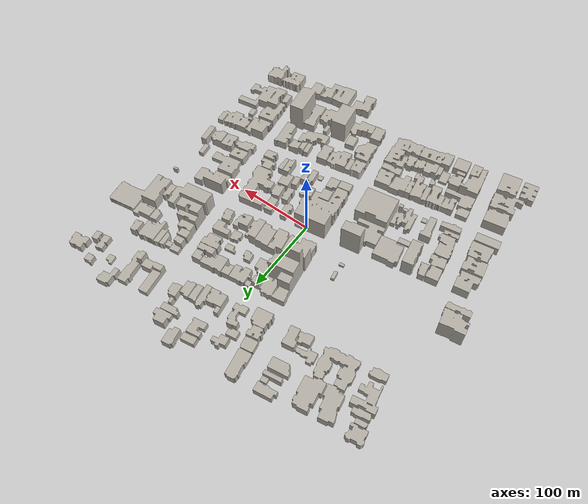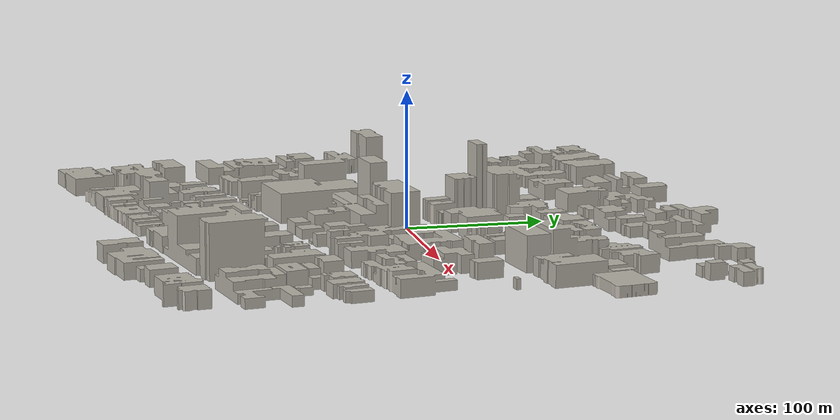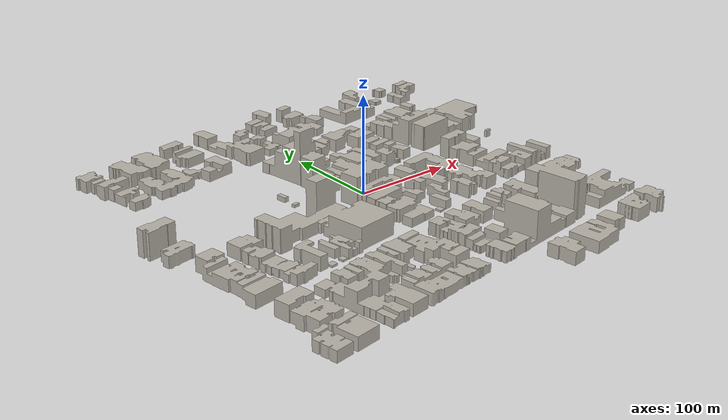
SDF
<?xml version="1.0" ?>
<sdf version="1.8">
  <model name="site_buildings">
    <static>true</static>
    <link name="link">
      <visual name="visual">
        <geometry><mesh><uri>meshes/buildings.obj</uri></mesh></geometry>
        <material>
          <ambient>0.62 0.60 0.56 1</ambient>
          <diffuse>0.72 0.70 0.66 1</diffuse>
          <specular>0.10 0.10 0.10 1</specular>
        </material>
      </visual>
      <collision name="c0">
        <pose>211.459 99.373 4.000 0 0 0.156840</pose>
        <geometry><box><size>39.560 30.591 8.000</size></box></geometry>
      </collision>
      <collision name="c1">
        <pose>185.775 105.556 4.000 0 0 1.716230</pose>
        <geometry><box><size>17.447 7.298 8.000</size></box></geometry>
      </collision>
      <collision name="c2">
        <pose>-175.502 -207.403 6.500 0 0 -1.402006</pose>
        <geometry><box><size>22.384 25.153 13.000</size></box></geometry>
      </collision>
      <collision name="c3">
        <pose>-201.664 -209.033 5.500 0 0 -2.982608</pose>
        <geometry><box><size>18.568 26.358 11.000</size></box></geometry>
      </collision>
      <collision name="c4">
        <pose>-178.064 -192.351 7.000 0 0 -2.968230</pose>
        <geometry><box><size>25.110 8.268 14.000</size></box></geometry>
      </collision>
      <collision name="c5">
        <pose>-196.344 -188.106 5.000 0 0 1.734147</pose>
        <geometry><box><size>6.389 14.358 10.000</size></box></geometry>
      </collision>
      <collision name="c6">
        <pose>191.258 -187.103 6.500 0 0 1.718981</pose>
        <geometry><box><size>19.528 7.616 13.000</size></box></geometry>
      </collision>
      <collision name="c7">
        <pose>163.342 -194.218 6.500 0 0 0.156268</pose>
        <geometry><box><size>22.168 7.325 13.000</size></box></geometry>
      </collision>
      <collision name="c8">
        <pose>164.644 -201.282 6.500 0 0 -2.982312</pose>
        <geometry><box><size>21.965 7.189 13.000</size></box></geometry>
      </collision>
      <collision name="c9">
        <pose>184.236 -192.419 7.500 0 0 -1.422097</pose>
        <geometry><box><size>28.481 7.844 15.000</size></box></geometry>
      </collision>
      <collision name="c10">
        <pose>198.977 -186.747 6.500 0 0 1.719249</pose>
        <geometry><box><size>21.697 7.761 13.000</size></box></geometry>
      </collision>
      <collision name="c11">
        <pose>164.723 -185.632 6.500 0 0 -2.988580</pose>
        <geometry><box><size>27.115 9.290 13.000</size></box></geometry>
      </collision>
      <collision name="c12">
        <pose>208.738 189.336 5.409 0 0 0.159674</pose>
        <geometry><box><size>17.920 7.602 10.818</size></box></geometry>
      </collision>
      <collision name="c13">
        <pose>145.962 197.332 5.000 0 0 0.160651</pose>
        <geometry><box><size>17.170 22.279 10.000</size></box></geometry>
      </collision>
      <collision name="c14">
        <pose>194.996 167.234 6.000 0 0 -1.410300</pose>
        <geometry><box><size>11.254 8.693 12.000</size></box></geometry>
      </collision>
      <collision name="c15">
        <pose>181.410 193.962 4.000 0 0 0.160385</pose>
        <geometry><box><size>10.799 10.449 8.000</size></box></geometry>
      </collision>
      <collision name="c16">
        <pose>130.813 172.444 4.630 0 0 -1.408550</pose>
        <geometry><box><size>42.651 12.870 9.261</size></box></geometry>
      </collision>
      <collision name="c17">
        <pose>184.903 168.526 4.000 0 0 1.731159</pose>
        <geometry><box><size>19.681 9.445 8.000</size></box></geometry>
      </collision>
      <collision name="c18">
        <pose>129.658 156.284 7.500 0 0 -1.408852</pose>
        <geometry><box><size>11.099 6.602 15.000</size></box></geometry>
      </collision>
      <collision name="c19">
        <pose>100.401 173.926 4.189 0 0 1.733142</pose>
        <geometry><box><size>30.209 11.393 8.377</size></box></geometry>
      </collision>
      <collision name="c20">
        <pose>119.849 159.510 5.500 0 0 -1.408668</pose>
        <geometry><box><size>11.022 7.411 11.000</size></box></geometry>
      </collision>
      <collision name="c21">
        <pose>113.184 158.387 5.500 0 0 1.732644</pose>
        <geometry><box><size>10.941 6.120 11.000</size></box></geometry>
      </collision>
      <collision name="c22">
        <pose>104.131 155.313 6.500 0 0 -2.980592</pose>
        <geometry><box><size>12.748 7.760 13.000</size></box></geometry>
      </collision>
      <collision name="c23">
        <pose>162.744 179.022 2.000 0 0 1.731443</pose>
        <geometry><box><size>10.807 8.964 4.000</size></box></geometry>
      </collision>
      <collision name="c24">
        <pose>210.134 181.277 5.000 0 0 0.159758</pose>
        <geometry><box><size>21.293 8.757 10.000</size></box></geometry>
      </collision>
      <collision name="c25">
        <pose>45.293 153.624 5.396 0 0 -1.409830</pose>
        <geometry><box><size>20.677 9.598 10.791</size></box></geometry>
      </collision>
      <collision name="c26">
        <pose>58.098 154.430 4.000 0 0 1.731167</pose>
        <geometry><box><size>19.922 12.015 8.000</size></box></geometry>
      </collision>
      <collision name="c27">
        <pose>36.136 150.958 4.500 0 0 -1.409782</pose>
        <geometry><box><size>28.745 9.337 9.000</size></box></geometry>
      </collision>
      <collision name="c28">
        <pose>26.555 145.624 6.000 0 0 0.159732</pose>
        <geometry><box><size>11.246 17.757 12.000</size></box></geometry>
      </collision>
      <collision name="c29">
        <pose>62.457 177.539 5.041 0 0 1.731138</pose>
        <geometry><box><size>7.069 4.013 10.082</size></box></geometry>
      </collision>
      <collision name="c30">
        <pose>55.381 186.335 5.000 0 0 0.159439</pose>
        <geometry><box><size>22.874 8.355 10.000</size></box></geometry>
      </collision>
      <collision name="c31">
        <pose>16.240 144.164 6.000 0 0 1.736226</pose>
        <geometry><box><size>15.837 10.751 12.000</size></box></geometry>
      </collision>
      <collision name="c32">
        <pose>68.540 165.462 5.500 0 0 -1.409947</pose>
        <geometry><box><size>15.883 12.156 11.000</size></box></geometry>
      </collision>
      <collision name="c33">
        <pose>31.713 210.015 5.500 0 0 -1.393572</pose>
        <geometry><box><size>21.016 12.900 11.000</size></box></geometry>
      </collision>
      <collision name="c34">
        <pose>-14.846 181.978 5.000 0 0 -1.391594</pose>
        <geometry><box><size>14.314 17.919 10.000</size></box></geometry>
      </collision>
      <collision name="c35">
        <pose>-43.773 165.692 3.969 0 0 -2.968375</pose>
        <geometry><box><size>16.430 14.516 7.939</size></box></geometry>
      </collision>
      <collision name="c36">
        <pose>-37.434 134.749 7.000 0 0 0.177727</pose>
        <geometry><box><size>22.044 20.702 14.000</size></box></geometry>
      </collision>
      <collision name="c37">
        <pose>-50.182 197.194 6.000 0 0 0.174072</pose>
        <geometry><box><size>14.180 22.698 12.000</size></box></geometry>
      </collision>
      <collision name="c38">
        <pose>-8.468 141.723 3.576 0 0 -1.422294</pose>
        <geometry><box><size>18.810 17.048 7.152</size></box></geometry>
      </collision>
      <collision name="c39">
        <pose>-41.483 151.637 6.500 0 0 0.172642</pose>
        <geometry><box><size>16.745 13.963 13.000</size></box></geometry>
      </collision>
      <collision name="c40">
        <pose>54.712 203.045 7.000 0 0 -2.971597</pose>
        <geometry><box><size>14.185 8.302 14.000</size></box></geometry>
      </collision>
      <collision name="c41">
        <pose>14.434 200.347 4.500 0 0 0.175326</pose>
        <geometry><box><size>17.771 8.840 9.000</size></box></geometry>
      </collision>
      <collision name="c42">
        <pose>-12.032 156.009 6.000 0 0 -2.990803</pose>
        <geometry><box><size>14.770 10.570 12.000</size></box></geometry>
      </collision>
      <collision name="c43">
        <pose>15.659 189.454 4.500 0 0 0.175089</pose>
        <geometry><box><size>17.414 9.662 9.000</size></box></geometry>
      </collision>
      <collision name="c44">
        <pose>17.581 180.329 4.000 0 0 0.175620</pose>
        <geometry><box><size>18.347 8.980 8.000</size></box></geometry>
      </collision>
      <collision name="c45">
        <pose>59.133 195.310 4.000 0 0 -2.971827</pose>
        <geometry><box><size>21.419 8.305 8.000</size></box></geometry>
      </collision>
      <collision name="c46">
        <pose>-46.035 179.534 2.581 0 0 0.172690</pose>
        <geometry><box><size>16.768 13.545 5.162</size></box></geometry>
      </collision>
      <collision name="c47">
        <pose>71.550 47.044 4.500 0 0 -1.411193</pose>
        <geometry><box><size>14.890 6.386 9.000</size></box></geometry>
      </collision>
      <collision name="c48">
        <pose>59.948 64.232 3.500 0 0 -1.409996</pose>
        <geometry><box><size>13.261 12.018 7.000</size></box></geometry>
      </collision>
      <collision name="c49">
        <pose>-34.406 96.657 5.411 0 0 -2.979550</pose>
        <geometry><box><size>16.452 16.200 10.822</size></box></geometry>
      </collision>
      <collision name="c50">
        <pose>74.009 37.211 2.000 0 0 -1.411116</pose>
        <geometry><box><size>5.324 4.789 4.000</size></box></geometry>
      </collision>
      <collision name="c51">
        <pose>51.296 44.054 3.192 0 0 1.720925</pose>
        <geometry><box><size>24.836 8.652 6.385</size></box></geometry>
      </collision>
      <collision name="c52">
        <pose>-16.224 96.307 5.032 0 0 1.734293</pose>
        <geometry><box><size>23.585 18.469 10.063</size></box></geometry>
      </collision>
      <collision name="c53">
        <pose>62.558 42.155 7.000 0 0 1.720564</pose>
        <geometry><box><size>15.530 13.052 14.000</size></box></geometry>
      </collision>
      <collision name="c54">
        <pose>-1.930 36.277 5.500 0 0 -1.408106</pose>
        <geometry><box><size>25.867 9.603 11.000</size></box></geometry>
      </collision>
      <collision name="c55">
        <pose>-16.916 29.489 7.000 0 0 1.733789</pose>
        <geometry><box><size>18.706 10.060 14.000</size></box></geometry>
      </collision>
      <collision name="c56">
        <pose>13.844 102.386 5.500 0 0 -1.407132</pose>
        <geometry><box><size>20.071 14.364 11.000</size></box></geometry>
      </collision>
      <collision name="c57">
        <pose>-26.785 27.888 7.500 0 0 -1.408027</pose>
        <geometry><box><size>18.688 9.939 15.000</size></box></geometry>
      </collision>
      <collision name="c58">
        <pose>-24.981 46.229 15.500 0 0 1.734543</pose>
        <geometry><box><size>16.961 19.316 31.000</size></box></geometry>
      </collision>
      <collision name="c59">
        <pose>22.854 45.746 8.000 0 0 -1.420657</pose>
        <geometry><box><size>24.504 9.191 16.000</size></box></geometry>
      </collision>
      <collision name="c60">
        <pose>-31.573 83.566 13.500 0 0 -2.979591</pose>
        <geometry><box><size>15.980 10.552 27.000</size></box></geometry>
      </collision>
      <collision name="c61">
        <pose>85.761 62.872 5.000 0 0 -2.981768</pose>
        <geometry><box><size>11.162 7.679 10.000</size></box></geometry>
      </collision>
      <collision name="c62">
        <pose>6.121 106.731 3.316 0 0 1.733760</pose>
        <geometry><box><size>7.170 6.390 6.632</size></box></geometry>
      </collision>
      <collision name="c63">
        <pose>32.290 44.935 8.000 0 0 -1.420962</pose>
        <geometry><box><size>26.730 9.245 16.000</size></box></geometry>
      </collision>
      <collision name="c64">
        <pose>79.377 69.629 5.500 0 0 0.159266</pose>
        <geometry><box><size>22.526 7.704 11.000</size></box></geometry>
      </collision>
      <collision name="c65">
        <pose>9.765 77.684 4.000 0 0 1.733677</pose>
        <geometry><box><size>14.146 10.102 8.000</size></box></geometry>
      </collision>
      <collision name="c66">
        <pose>36.097 108.090 5.500 0 0 -1.407312</pose>
        <geometry><box><size>14.165 10.512 11.000</size></box></geometry>
      </collision>
      <collision name="c67">
        <pose>76.958 113.896 6.000 0 0 0.161885</pose>
        <geometry><box><size>12.203 12.103 12.000</size></box></geometry>
      </collision>
      <collision name="c68">
        <pose>-1.008 99.422 5.720 0 0 0.162216</pose>
        <geometry><box><size>10.061 9.576 11.439</size></box></geometry>
      </collision>
      <collision name="c69">
        <pose>-26.748 58.656 27.500 0 0 -2.978982</pose>
        <geometry><box><size>17.375 7.650 55.000</size></box></geometry>
      </collision>
      <collision name="c70">
        <pose>41.877 44.952 8.500 0 0 1.720634</pose>
        <geometry><box><size>27.217 9.714 17.000</size></box></geometry>
      </collision>
      <collision name="c71">
        <pose>1.669 83.127 6.500 0 0 -1.408217</pose>
        <geometry><box><size>16.746 10.400 13.000</size></box></geometry>
      </collision>
      <collision name="c72">
        <pose>-20.798 71.742 17.500 0 0 0.162243</pose>
        <geometry><box><size>33.397 16.271 35.000</size></box></geometry>
      </collision>
      <collision name="c73">
        <pose>48.561 108.490 6.500 0 0 1.734402</pose>
        <geometry><box><size>19.591 14.207 13.000</size></box></geometry>
      </collision>
      <collision name="c74">
        <pose>14.342 41.639 7.000 0 0 1.733691</pose>
        <geometry><box><size>29.990 9.253 14.000</size></box></geometry>
      </collision>
      <collision name="c75">
        <pose>62.910 113.004 6.000 0 0 1.734428</pose>
        <geometry><box><size>12.826 15.026 12.000</size></box></geometry>
      </collision>
      <collision name="c76">
        <pose>87.452 47.661 5.000 0 0 -1.410579</pose>
        <geometry><box><size>15.664 12.331 10.000</size></box></geometry>
      </collision>
      <collision name="c77">
        <pose>26.051 104.583 5.000 0 0 -1.407660</pose>
        <geometry><box><size>17.861 10.448 10.000</size></box></geometry>
      </collision>
      <collision name="c78">
        <pose>6.453 38.001 7.000 0 0 -1.408129</pose>
        <geometry><box><size>25.341 7.503 14.000</size></box></geometry>
      </collision>
      <collision name="c79">
        <pose>78.846 84.112 4.500 0 0 -2.986116</pose>
        <geometry><box><size>18.281 9.296 9.000</size></box></geometry>
      </collision>
      <collision name="c80">
        <pose>75.187 101.722 6.000 0 0 -2.985844</pose>
        <geometry><box><size>22.080 8.282 12.000</size></box></geometry>
      </collision>
      <collision name="c81">
        <pose>54.712 80.819 2.500 0 0 0.155476</pose>
        <geometry><box><size>13.989 8.068 5.000</size></box></geometry>
      </collision>
      <collision name="c82">
        <pose>30.375 77.778 3.500 0 0 1.727498</pose>
        <geometry><box><size>12.117 10.764 7.000</size></box></geometry>
      </collision>
      <collision name="c83">
        <pose>75.757 92.971 6.500 0 0 0.156028</pose>
        <geometry><box><size>23.377 9.177 13.000</size></box></geometry>
      </collision>
      <collision name="c84">
        <pose>178.525 72.094 8.000 0 0 -1.419848</pose>
        <geometry><box><size>37.916 8.096 16.000</size></box></geometry>
      </collision>
      <collision name="c85">
        <pose>122.300 82.847 9.500 0 0 -2.965769</pose>
        <geometry><box><size>26.853 8.155 19.000</size></box></geometry>
      </collision>
      <collision name="c86">
        <pose>166.383 128.477 6.500 0 0 1.734638</pose>
        <geometry><box><size>15.202 9.984 13.000</size></box></geometry>
      </collision>
      <collision name="c87">
        <pose>159.971 64.999 6.500 0 0 -1.419806</pose>
        <geometry><box><size>26.212 10.690 13.000</size></box></geometry>
      </collision>
      <collision name="c88">
        <pose>116.928 92.171 7.000 0 0 -2.994620</pose>
        <geometry><box><size>19.466 10.318 14.000</size></box></geometry>
      </collision>
      <collision name="c89">
        <pose>125.929 120.661 5.000 0 0 -1.423282</pose>
        <geometry><box><size>18.239 6.156 10.000</size></box></geometry>
      </collision>
      <collision name="c90">
        <pose>141.840 117.780 6.000 0 0 1.718579</pose>
        <geometry><box><size>29.654 8.219 12.000</size></box></geometry>
      </collision>
      <collision name="c91">
        <pose>149.781 121.077 5.500 0 0 1.718747</pose>
        <geometry><box><size>25.660 8.458 11.000</size></box></geometry>
      </collision>
      <collision name="c92">
        <pose>118.739 121.932 3.415 0 0 0.147717</pose>
        <geometry><box><size>7.700 7.171 6.829</size></box></geometry>
      </collision>
      <collision name="c93">
        <pose>132.147 54.034 13.000 0 0 0.149913</pose>
        <geometry><box><size>37.747 17.693 26.000</size></box></geometry>
      </collision>
      <collision name="c94">
        <pose>110.164 112.403 6.000 0 0 -2.995000</pose>
        <geometry><box><size>11.482 9.055 12.000</size></box></geometry>
      </collision>
      <collision name="c95">
        <pose>161.742 100.234 4.000 0 0 1.716329</pose>
        <geometry><box><size>14.861 9.473 8.000</size></box></geometry>
      </collision>
      <collision name="c96">
        <pose>108.760 121.483 3.109 0 0 0.146364</pose>
        <geometry><box><size>12.185 9.199 6.218</size></box></geometry>
      </collision>
      <collision name="c97">
        <pose>111.940 101.718 6.500 0 0 0.146803</pose>
        <geometry><box><size>14.195 10.036 13.000</size></box></geometry>
      </collision>
      <collision name="c98">
        <pose>189.017 73.535 8.000 0 0 1.721744</pose>
        <geometry><box><size>38.208 13.083 16.000</size></box></geometry>
      </collision>
      <collision name="c99">
        <pose>174.426 102.091 5.000 0 0 1.716601</pose>
        <geometry><box><size>14.853 16.171 10.000</size></box></geometry>
      </collision>
      <collision name="c100">
        <pose>126.176 72.812 13.500 0 0 0.175981</pose>
        <geometry><box><size>30.952 12.966 27.000</size></box></geometry>
      </collision>
      <collision name="c101">
        <pose>133.598 120.238 5.000 0 0 1.718400</pose>
        <geometry><box><size>22.017 7.367 10.000</size></box></geometry>
      </collision>
      <collision name="c102">
        <pose>171.554 63.863 5.500 0 0 -1.420212</pose>
        <geometry><box><size>19.904 8.710 11.000</size></box></geometry>
      </collision>
      <collision name="c103">
        <pose>156.449 124.174 5.500 0 0 -1.408706</pose>
        <geometry><box><size>22.752 5.925 11.000</size></box></geometry>
      </collision>
      <collision name="c104">
        <pose>138.989 -47.435 7.000 0 0 0.157537</pose>
        <geometry><box><size>17.341 6.932 14.000</size></box></geometry>
      </collision>
      <collision name="c105">
        <pose>138.759 -32.472 6.000 0 0 -2.983796</pose>
        <geometry><box><size>21.454 7.353 12.000</size></box></geometry>
      </collision>
      <collision name="c106">
        <pose>133.401 18.968 10.500 0 0 0.157811</pose>
        <geometry><box><size>27.570 11.605 21.000</size></box></geometry>
      </collision>
      <collision name="c107">
        <pose>135.927 -13.354 6.000 0 0 -2.983564</pose>
        <geometry><box><size>22.575 7.862 12.000</size></box></geometry>
      </collision>
      <collision name="c108">
        <pose>160.818 -47.415 6.000 0 0 -1.411552</pose>
        <geometry><box><size>19.491 7.693 12.000</size></box></geometry>
      </collision>
      <collision name="c109">
        <pose>168.498 -45.800 6.000 0 0 -1.411712</pose>
        <geometry><box><size>19.505 7.990 12.000</size></box></geometry>
      </collision>
      <collision name="c110">
        <pose>139.921 -39.894 5.500 0 0 -2.983614</pose>
        <geometry><box><size>21.492 7.680 11.000</size></box></geometry>
      </collision>
      <collision name="c111">
        <pose>186.082 -17.679 3.500 0 0 1.732704</pose>
        <geometry><box><size>16.617 6.442 7.000</size></box></geometry>
      </collision>
      <collision name="c112">
        <pose>149.301 -21.142 3.226 0 0 -2.984116</pose>
        <geometry><box><size>38.528 11.712 6.453</size></box></geometry>
      </collision>
      <collision name="c113">
        <pose>153.466 -53.319 2.952 0 0 -2.984063</pose>
        <geometry><box><size>8.709 7.767 5.904</size></box></geometry>
      </collision>
      <collision name="c114">
        <pose>196.523 -39.200 6.500 0 0 -1.411560</pose>
        <geometry><box><size>24.726 7.670 13.000</size></box></geometry>
      </collision>
      <collision name="c115">
        <pose>156.278 19.106 6.000 0 0 1.732783</pose>
        <geometry><box><size>20.100 11.545 12.000</size></box></geometry>
      </collision>
      <collision name="c116">
        <pose>190.570 -45.273 3.500 0 0 1.729786</pose>
        <geometry><box><size>12.073 6.012 7.000</size></box></geometry>
      </collision>
      <collision name="c117">
        <pose>176.852 -44.748 7.000 0 0 1.729793</pose>
        <geometry><box><size>18.521 8.837 14.000</size></box></geometry>
      </collision>
      <collision name="c118">
        <pose>134.152 -4.830 7.500 0 0 0.157653</pose>
        <geometry><box><size>21.786 9.651 15.000</size></box></geometry>
      </collision>
      <collision name="c119">
        <pose>132.011 7.645 6.500 0 0 -2.983722</pose>
        <geometry><box><size>22.252 9.852 13.000</size></box></geometry>
      </collision>
      <collision name="c120">
        <pose>139.701 -56.397 4.758 0 0 0.157969</pose>
        <geometry><box><size>19.451 9.517 9.515</size></box></geometry>
      </collision>
      <collision name="c121">
        <pose>184.127 -43.140 5.500 0 0 1.730210</pose>
        <geometry><box><size>17.316 6.046 11.000</size></box></geometry>
      </collision>
      <collision name="c122">
        <pose>152.495 -125.069 5.500 0 0 -2.989658</pose>
        <geometry><box><size>22.040 7.941 11.000</size></box></geometry>
      </collision>
      <collision name="c123">
        <pose>167.127 -86.033 5.500 0 0 1.724228</pose>
        <geometry><box><size>20.813 7.253 11.000</size></box></geometry>
      </collision>
      <collision name="c124">
        <pose>150.836 -155.815 5.000 0 0 1.724233</pose>
        <geometry><box><size>17.000 7.876 10.000</size></box></geometry>
      </collision>
      <collision name="c125">
        <pose>146.030 -99.779 6.000 0 0 -2.989567</pose>
        <geometry><box><size>17.508 8.076 12.000</size></box></geometry>
      </collision>
      <collision name="c126">
        <pose>175.749 -145.043 6.500 0 0 -1.417693</pose>
        <geometry><box><size>30.756 14.614 13.000</size></box></geometry>
      </collision>
      <collision name="c127">
        <pose>147.374 -137.316 5.500 0 0 -1.417647</pose>
        <geometry><box><size>14.741 8.587 11.000</size></box></geometry>
      </collision>
      <collision name="c128">
        <pose>195.288 -80.711 4.500 0 0 1.724126</pose>
        <geometry><box><size>20.105 8.488 9.000</size></box></geometry>
      </collision>
      <collision name="c129">
        <pose>194.888 -144.696 3.618 0 0 1.723721</pose>
        <geometry><box><size>25.623 23.328 7.235</size></box></geometry>
      </collision>
      <collision name="c130">
        <pose>185.022 -83.780 5.000 0 0 -1.417770</pose>
        <geometry><box><size>22.956 12.741 10.000</size></box></geometry>
      </collision>
      <collision name="c131">
        <pose>160.980 -147.269 8.000 0 0 -1.417750</pose>
        <geometry><box><size>30.824 15.269 16.000</size></box></geometry>
      </collision>
      <collision name="c132">
        <pose>203.956 -79.240 4.000 0 0 -1.417285</pose>
        <geometry><box><size>19.065 7.590 8.000</size></box></geometry>
      </collision>
      <collision name="c133">
        <pose>194.736 -124.939 3.845 0 0 0.151840</pose>
        <geometry><box><size>29.069 13.514 7.690</size></box></geometry>
      </collision>
      <collision name="c134">
        <pose>150.283 -109.726 6.500 0 0 -2.989568</pose>
        <geometry><box><size>22.299 7.750 13.000</size></box></geometry>
      </collision>
      <collision name="c135">
        <pose>145.156 -86.710 8.000 0 0 1.723643</pose>
        <geometry><box><size>14.521 17.525 16.000</size></box></geometry>
      </collision>
      <collision name="c136">
        <pose>174.414 -83.126 5.500 0 0 1.723967</pose>
        <geometry><box><size>17.268 8.046 11.000</size></box></geometry>
      </collision>
      <collision name="c137">
        <pose>152.141 -117.231 6.500 0 0 -2.989488</pose>
        <geometry><box><size>22.724 7.656 13.000</size></box></geometry>
      </collision>
      <collision name="c138">
        <pose>160.085 -89.707 4.000 0 0 -1.417696</pose>
        <geometry><box><size>27.430 7.799 8.000</size></box></geometry>
      </collision>
      <collision name="c139">
        <pose>78.476 -98.374 6.000 0 0 1.736912</pose>
        <geometry><box><size>16.357 6.787 12.000</size></box></geometry>
      </collision>
      <collision name="c140">
        <pose>108.934 -89.506 6.000 0 0 1.735100</pose>
        <geometry><box><size>10.701 16.915 12.000</size></box></geometry>
      </collision>
      <collision name="c141">
        <pose>5.770 -156.598 3.500 0 0 -2.979265</pose>
        <geometry><box><size>15.858 7.886 7.000</size></box></geometry>
      </collision>
      <collision name="c142">
        <pose>98.372 -152.626 6.000 0 0 -1.407303</pose>
        <geometry><box><size>39.177 15.324 12.000</size></box></geometry>
      </collision>
      <collision name="c143">
        <pose>20.544 -110.926 6.500 0 0 1.734951</pose>
        <geometry><box><size>24.427 13.124 13.000</size></box></geometry>
      </collision>
      <collision name="c144">
        <pose>47.583 -106.281 6.000 0 0 -1.406428</pose>
        <geometry><box><size>24.275 14.152 12.000</size></box></geometry>
      </collision>
      <collision name="c145">
        <pose>75.862 -162.918 6.500 0 0 1.734751</pose>
        <geometry><box><size>25.585 18.000 13.000</size></box></geometry>
      </collision>
      <collision name="c146">
        <pose>2.130 -128.035 6.500 0 0 0.161082</pose>
        <geometry><box><size>18.193 7.898 13.000</size></box></geometry>
      </collision>
      <collision name="c147">
        <pose>78.232 -120.207 4.638 0 0 1.735770</pose>
        <geometry><box><size>19.249 13.659 9.275</size></box></geometry>
      </collision>
      <collision name="c148">
        <pose>-0.273 -119.949 4.500 0 0 0.162829</pose>
        <geometry><box><size>15.752 8.866 9.000</size></box></geometry>
      </collision>
      <collision name="c149">
        <pose>5.720 -137.880 6.500 0 0 -2.980866</pose>
        <geometry><box><size>22.737 12.694 13.000</size></box></geometry>
      </collision>
      <collision name="c150">
        <pose>8.469 -176.808 5.500 0 0 0.162123</pose>
        <geometry><box><size>15.330 22.645 11.000</size></box></geometry>
      </collision>
      <collision name="c151">
        <pose>108.820 -99.299 6.000 0 0 0.163663</pose>
        <geometry><box><size>17.790 8.596 12.000</size></box></geometry>
      </collision>
      <collision name="c152">
        <pose>19.886 -177.561 6.000 0 0 1.734530</pose>
        <geometry><box><size>15.093 6.986 12.000</size></box></geometry>
      </collision>
      <collision name="c153">
        <pose>56.057 -161.111 16.500 0 0 1.734212</pose>
        <geometry><box><size>35.542 20.507 33.000</size></box></geometry>
      </collision>
      <collision name="c154">
        <pose>10.406 -110.710 4.500 0 0 -1.406781</pose>
        <geometry><box><size>19.431 6.809 9.000</size></box></geometry>
      </collision>
      <collision name="c155">
        <pose>88.366 -163.309 5.000 0 0 1.734565</pose>
        <geometry><box><size>20.757 6.541 10.000</size></box></geometry>
      </collision>
      <collision name="c156">
        <pose>30.668 -108.972 4.500 0 0 1.735270</pose>
        <geometry><box><size>25.010 7.505 9.000</size></box></geometry>
      </collision>
      <collision name="c157">
        <pose>72.398 -100.887 4.500 0 0 1.737165</pose>
        <geometry><box><size>16.871 6.035 9.000</size></box></geometry>
      </collision>
      <collision name="c158">
        <pose>87.106 -104.022 6.000 0 0 0.163842</pose>
        <geometry><box><size>5.792 4.760 12.000</size></box></geometry>
      </collision>
      <collision name="c159">
        <pose>27.067 -176.348 6.000 0 0 -1.407204</pose>
        <geometry><box><size>15.151 7.581 12.000</size></box></geometry>
      </collision>
      <collision name="c160">
        <pose>64.930 -124.711 5.500 0 0 1.735296</pose>
        <geometry><box><size>14.689 14.069 11.000</size></box></geometry>
      </collision>
      <collision name="c161">
        <pose>34.145 -174.752 6.000 0 0 1.734164</pose>
        <geometry><box><size>17.167 6.900 12.000</size></box></geometry>
      </collision>
      <collision name="c162">
        <pose>7.085 -147.763 5.000 0 0 0.161012</pose>
        <geometry><box><size>20.156 7.250 10.000</size></box></geometry>
      </collision>
      <collision name="c163">
        <pose>92.644 -94.888 5.000 0 0 1.734924</pose>
        <geometry><box><size>13.700 8.127 10.000</size></box></geometry>
      </collision>
      <collision name="c164">
        <pose>85.266 -94.554 6.000 0 0 1.734812</pose>
        <geometry><box><size>12.092 6.311 12.000</size></box></geometry>
      </collision>
      <collision name="c165">
        <pose>42.138 -170.862 2.500 0 0 1.734053</pose>
        <geometry><box><size>20.770 10.137 5.000</size></box></geometry>
      </collision>
      <collision name="c166">
        <pose>115.191 -147.663 20.000 0 0 1.734196</pose>
        <geometry><box><size>40.511 19.481 40.000</size></box></geometry>
      </collision>
      <collision name="c167">
        <pose>112.809 -112.310 6.000 0 0 1.735345</pose>
        <geometry><box><size>18.403 14.176 12.000</size></box></geometry>
      </collision>
      <collision name="c168">
        <pose>37.434 -107.563 4.000 0 0 -1.406101</pose>
        <geometry><box><size>19.297 6.301 8.000</size></box></geometry>
      </collision>
      <collision name="c169">
        <pose>-2.550 -108.866 6.500 0 0 -2.979075</pose>
        <geometry><box><size>15.267 13.749 13.000</size></box></geometry>
      </collision>
      <collision name="c170">
        <pose>72.279 -59.631 6.500 0 0 -1.424181</pose>
        <geometry><box><size>22.395 8.290 13.000</size></box></geometry>
      </collision>
      <collision name="c171">
        <pose>61.630 -20.340 4.500 0 0 -1.406989</pose>
        <geometry><box><size>18.174 12.603 9.000</size></box></geometry>
      </collision>
      <collision name="c172">
        <pose>32.893 -2.009 4.500 0 0 -1.406582</pose>
        <geometry><box><size>20.450 10.873 9.000</size></box></geometry>
      </collision>
      <collision name="c173">
        <pose>-9.328 -61.060 6.500 0 0 0.163102</pose>
        <geometry><box><size>16.453 15.344 13.000</size></box></geometry>
      </collision>
      <collision name="c174">
        <pose>-3.364 -34.231 7.500 0 0 0.162954</pose>
        <geometry><box><size>37.019 11.843 15.000</size></box></geometry>
      </collision>
      <collision name="c175">
        <pose>54.633 1.904 5.000 0 0 -1.406700</pose>
        <geometry><box><size>20.417 11.268 10.000</size></box></geometry>
      </collision>
      <collision name="c176">
        <pose>-5.252 -23.774 10.500 0 0 -2.978911</pose>
        <geometry><box><size>37.234 9.418 21.000</size></box></geometry>
      </collision>
      <collision name="c177">
        <pose>-11.479 -47.573 7.000 0 0 -2.978976</pose>
        <geometry><box><size>16.106 11.978 14.000</size></box></geometry>
      </collision>
      <collision name="c178">
        <pose>95.509 -31.696 4.428 0 0 0.145038</pose>
        <geometry><box><size>23.235 15.128 8.856</size></box></geometry>
      </collision>
      <collision name="c179">
        <pose>69.923 -31.477 2.000 0 0 -1.408120</pose>
        <geometry><box><size>6.258 2.766 4.000</size></box></geometry>
      </collision>
      <collision name="c180">
        <pose>97.145 -43.092 5.000 0 0 -2.996553</pose>
        <geometry><box><size>12.224 7.899 10.000</size></box></geometry>
      </collision>
      <collision name="c181">
        <pose>-5.267 -77.656 4.500 0 0 0.153379</pose>
        <geometry><box><size>16.714 11.670 9.000</size></box></geometry>
      </collision>
      <collision name="c182">
        <pose>50.913 -45.723 5.000 0 0 -1.407201</pose>
        <geometry><box><size>13.750 7.585 10.000</size></box></geometry>
      </collision>
      <collision name="c183">
        <pose>82.199 -4.555 6.000 0 0 0.162499</pose>
        <geometry><box><size>34.434 41.938 12.000</size></box></geometry>
      </collision>
      <collision name="c184">
        <pose>45.465 -59.179 6.000 0 0 0.162485</pose>
        <geometry><box><size>7.553 15.385 12.000</size></box></geometry>
      </collision>
      <collision name="c185">
        <pose>80.773 -58.475 5.500 0 0 -1.424659</pose>
        <geometry><box><size>19.421 6.427 11.000</size></box></geometry>
      </collision>
      <collision name="c186">
        <pose>61.960 -38.796 6.000 0 0 -1.407044</pose>
        <geometry><box><size>18.362 14.128 12.000</size></box></geometry>
      </collision>
      <collision name="c187">
        <pose>104.002 -59.802 6.000 0 0 -2.996055</pose>
        <geometry><box><size>15.088 11.836 12.000</size></box></geometry>
      </collision>
      <collision name="c188">
        <pose>99.394 -49.788 5.000 0 0 0.145443</pose>
        <geometry><box><size>19.768 6.008 10.000</size></box></geometry>
      </collision>
      <collision name="c189">
        <pose>38.557 -64.776 4.500 0 0 1.734346</pose>
        <geometry><box><size>21.148 7.917 9.000</size></box></geometry>
      </collision>
      <collision name="c190">
        <pose>31.247 -73.649 1.000 0 0 -1.408519</pose>
        <geometry><box><size>6.761 6.051 2.000</size></box></geometry>
      </collision>
      <collision name="c191">
        <pose>7.477 -52.438 3.876 0 0 1.734035</pose>
        <geometry><box><size>16.055 13.404 7.753</size></box></geometry>
      </collision>
      <collision name="c192">
        <pose>10.543 -72.818 3.624 0 0 -1.407386</pose>
        <geometry><box><size>16.466 13.440 7.248</size></box></geometry>
      </collision>
      <collision name="c193">
        <pose>34.500 -39.286 3.500 0 0 1.734069</pose>
        <geometry><box><size>10.749 7.416 7.000</size></box></geometry>
      </collision>
      <collision name="c194">
        <pose>83.875 -210.042 6.000 0 0 1.734296</pose>
        <geometry><box><size>31.079 17.234 12.000</size></box></geometry>
      </collision>
      <collision name="c195">
        <pose>96.655 -207.844 6.000 0 0 1.734474</pose>
        <geometry><box><size>29.089 8.704 12.000</size></box></geometry>
      </collision>
      <collision name="c196">
        <pose>50.566 -213.610 6.500 0 0 -1.407545</pose>
        <geometry><box><size>29.104 14.621 13.000</size></box></geometry>
      </collision>
      <collision name="c197">
        <pose>62.355 -206.113 5.000 0 0 -1.407691</pose>
        <geometry><box><size>15.843 10.692 10.000</size></box></geometry>
      </collision>
      <collision name="c198">
        <pose>126.220 -197.671 6.000 0 0 1.733954</pose>
        <geometry><box><size>20.345 15.422 12.000</size></box></geometry>
      </collision>
      <collision name="c199">
        <pose>112.825 -200.979 4.500 0 0 1.734015</pose>
        <geometry><box><size>20.339 8.962 9.000</size></box></geometry>
      </collision>
      <collision name="c200">
        <pose>105.034 -206.580 6.000 0 0 -1.407431</pose>
        <geometry><box><size>28.871 8.238 12.000</size></box></geometry>
      </collision>
      <collision name="c201">
        <pose>-88.758 -127.480 6.000 0 0 1.721142</pose>
        <geometry><box><size>23.525 7.161 12.000</size></box></geometry>
      </collision>
      <collision name="c202">
        <pose>-38.702 -119.601 5.000 0 0 0.150067</pose>
        <geometry><box><size>20.255 7.836 10.000</size></box></geometry>
      </collision>
      <collision name="c203">
        <pose>-67.638 -167.164 5.000 0 0 1.721647</pose>
        <geometry><box><size>15.000 6.039 10.000</size></box></geometry>
      </collision>
      <collision name="c204">
        <pose>-40.081 -184.964 4.500 0 0 1.744413</pose>
        <geometry><box><size>18.973 5.954 9.000</size></box></geometry>
      </collision>
      <collision name="c205">
        <pose>-131.283 -132.430 6.000 0 0 -1.420357</pose>
        <geometry><box><size>19.336 7.215 12.000</size></box></geometry>
      </collision>
      <collision name="c206">
        <pose>-133.928 -200.307 5.500 0 0 -1.420488</pose>
        <geometry><box><size>17.625 5.628 11.000</size></box></geometry>
      </collision>
      <collision name="c207">
        <pose>-28.071 -183.267 4.513 0 0 -1.397077</pose>
        <geometry><box><size>19.733 5.915 9.025</size></box></geometry>
      </collision>
      <collision name="c208">
        <pose>-74.336 -124.336 6.000 0 0 -1.419909</pose>
        <geometry><box><size>20.924 6.895 12.000</size></box></geometry>
      </collision>
      <collision name="c209">
        <pose>-116.378 -129.034 5.500 0 0 -1.420681</pose>
        <geometry><box><size>17.343 6.981 11.000</size></box></geometry>
      </collision>
      <collision name="c210">
        <pose>-34.025 -184.332 5.000 0 0 1.744515</pose>
        <geometry><box><size>19.785 6.196 10.000</size></box></geometry>
      </collision>
      <collision name="c211">
        <pose>-144.551 -144.704 4.500 0 0 0.149190</pose>
        <geometry><box><size>17.477 12.542 9.000</size></box></geometry>
      </collision>
      <collision name="c212">
        <pose>-30.256 -164.336 7.000 0 0 0.150141</pose>
        <geometry><box><size>18.860 9.858 14.000</size></box></geometry>
      </collision>
      <collision name="c213">
        <pose>-140.423 -201.796 4.000 0 0 -1.420115</pose>
        <geometry><box><size>19.303 7.654 8.000</size></box></geometry>
      </collision>
      <collision name="c214">
        <pose>-72.018 -190.519 4.500 0 0 1.722652</pose>
        <geometry><box><size>18.706 11.593 9.000</size></box></geometry>
      </collision>
      <collision name="c215">
        <pose>-80.511 -132.096 5.000 0 0 -1.415998</pose>
        <geometry><box><size>35.427 7.799 10.000</size></box></geometry>
      </collision>
      <collision name="c216">
        <pose>-91.092 -193.606 6.000 0 0 -1.436051</pose>
        <geometry><box><size>20.585 11.855 12.000</size></box></geometry>
      </collision>
      <collision name="c217">
        <pose>-76.411 -168.028 4.500 0 0 -1.419937</pose>
        <geometry><box><size>16.944 11.572 9.000</size></box></geometry>
      </collision>
      <collision name="c218">
        <pose>-21.495 -182.029 3.788 0 0 1.744516</pose>
        <geometry><box><size>19.545 7.467 7.576</size></box></geometry>
      </collision>
      <collision name="c219">
        <pose>-130.865 -163.998 9.500 0 0 -2.992066</pose>
        <geometry><box><size>38.559 14.819 19.000</size></box></geometry>
      </collision>
      <collision name="c220">
        <pose>-52.084 -186.579 5.000 0 0 -1.419673</pose>
        <geometry><box><size>19.191 6.446 10.000</size></box></geometry>
      </collision>
      <collision name="c221">
        <pose>-60.813 -188.723 4.500 0 0 -1.419475</pose>
        <geometry><box><size>18.527 11.465 9.000</size></box></geometry>
      </collision>
      <collision name="c222">
        <pose>-38.980 -136.258 5.500 0 0 -2.991602</pose>
        <geometry><box><size>26.525 10.850 11.000</size></box></geometry>
      </collision>
      <collision name="c223">
        <pose>-30.663 -154.710 7.500 0 0 0.150147</pose>
        <geometry><box><size>16.430 9.305 15.000</size></box></geometry>
      </collision>
      <collision name="c224">
        <pose>-52.692 -163.186 5.000 0 0 -1.420035</pose>
        <geometry><box><size>18.413 12.043 10.000</size></box></geometry>
      </collision>
      <collision name="c225">
        <pose>-127.825 -199.879 5.000 0 0 1.721479</pose>
        <geometry><box><size>19.261 6.574 10.000</size></box></geometry>
      </collision>
      <collision name="c226">
        <pose>-36.324 -146.100 7.500 0 0 0.150229</pose>
        <geometry><box><size>26.589 9.415 15.000</size></box></geometry>
      </collision>
      <collision name="c227">
        <pose>-81.683 -191.784 5.000 0 0 0.148840</pose>
        <geometry><box><size>7.954 20.194 10.000</size></box></geometry>
      </collision>
      <collision name="c228">
        <pose>-37.091 -127.145 5.000 0 0 0.150114</pose>
        <geometry><box><size>21.366 7.569 10.000</size></box></geometry>
      </collision>
      <collision name="c229">
        <pose>-105.763 -132.269 6.000 0 0 -1.405071</pose>
        <geometry><box><size>28.471 12.892 12.000</size></box></geometry>
      </collision>
      <collision name="c230">
        <pose>-106.590 -195.700 6.000 0 0 1.721959</pose>
        <geometry><box><size>18.772 10.045 12.000</size></box></geometry>
      </collision>
      <collision name="c231">
        <pose>-118.755 -178.993 4.479 0 0 1.720467</pose>
        <geometry><box><size>5.197 7.874 8.959</size></box></geometry>
      </collision>
      <collision name="c232">
        <pose>-115.999 -197.128 6.000 0 0 1.721869</pose>
        <geometry><box><size>18.783 8.989 12.000</size></box></geometry>
      </collision>
      <collision name="c233">
        <pose>-40.673 -111.994 6.000 0 0 1.722134</pose>
        <geometry><box><size>8.353 20.281 12.000</size></box></geometry>
      </collision>
      <collision name="c234">
        <pose>-85.213 -170.113 6.000 0 0 1.721516</pose>
        <geometry><box><size>15.431 6.466 12.000</size></box></geometry>
      </collision>
      <collision name="c235">
        <pose>-116.369 -183.953 5.271 0 0 -2.992145</pose>
        <geometry><box><size>11.115 5.322 10.542</size></box></geometry>
      </collision>
      <collision name="c236">
        <pose>-137.708 -182.415 4.500 0 0 -2.992039</pose>
        <geometry><box><size>19.297 5.871 9.000</size></box></geometry>
      </collision>
      <collision name="c237">
        <pose>-114.743 -172.410 2.000 0 0 -2.991834</pose>
        <geometry><box><size>17.785 6.624 4.000</size></box></geometry>
      </collision>
      <collision name="c238">
        <pose>-147.912 -131.718 4.000 0 0 -2.991621</pose>
        <geometry><box><size>15.033 12.540 8.000</size></box></geometry>
      </collision>
      <collision name="c239">
        <pose>-56.680 -119.571 5.500 0 0 -2.990812</pose>
        <geometry><box><size>13.403 20.984 11.000</size></box></geometry>
      </collision>
      <collision name="c240">
        <pose>-66.722 -124.567 6.500 0 0 -1.419905</pose>
        <geometry><box><size>25.503 8.095 13.000</size></box></geometry>
      </collision>
      <collision name="c241">
        <pose>-138.034 -188.553 4.500 0 0 -2.992110</pose>
        <geometry><box><size>16.259 6.176 9.000</size></box></geometry>
      </collision>
      <collision name="c242">
        <pose>-100.432 -170.418 2.000 0 0 1.721464</pose>
        <geometry><box><size>18.432 10.929 4.000</size></box></geometry>
      </collision>
      <collision name="c243">
        <pose>-61.530 -166.200 4.000 0 0 -1.419645</pose>
        <geometry><box><size>15.089 6.333 8.000</size></box></geometry>
      </collision>
      <collision name="c244">
        <pose>-138.893 -175.933 4.500 0 0 -2.992185</pose>
        <geometry><box><size>19.698 7.298 9.000</size></box></geometry>
      </collision>
      <collision name="c245">
        <pose>-123.792 -130.584 5.000 0 0 1.720605</pose>
        <geometry><box><size>16.637 8.159 10.000</size></box></geometry>
      </collision>
      <collision name="c246">
        <pose>-95.693 -128.473 5.000 0 0 1.720825</pose>
        <geometry><box><size>23.624 6.858 10.000</size></box></geometry>
      </collision>
      <collision name="c247">
        <pose>-91.703 -170.232 5.000 0 0 -1.420125</pose>
        <geometry><box><size>17.132 6.403 10.000</size></box></geometry>
      </collision>
      <collision name="c248">
        <pose>-43.701 -161.350 3.500 0 0 -1.420096</pose>
        <geometry><box><size>14.069 6.291 7.000</size></box></geometry>
      </collision>
      <collision name="c249">
        <pose>-45.771 -187.044 4.500 0 0 0.164516</pose>
        <geometry><box><size>6.096 16.470 9.000</size></box></geometry>
      </collision>
      <collision name="c250">
        <pose>-187.559 -141.935 8.000 0 0 -2.980111</pose>
        <geometry><box><size>28.877 16.489 16.000</size></box></geometry>
      </collision>
      <collision name="c251">
        <pose>-185.798 -154.523 5.500 0 0 -2.975667</pose>
        <geometry><box><size>26.508 9.324 11.000</size></box></geometry>
      </collision>
      <collision name="c252">
        <pose>-185.147 -163.821 7.000 0 0 0.163655</pose>
        <geometry><box><size>31.455 9.280 14.000</size></box></geometry>
      </collision>
      <collision name="c253">
        <pose>-181.581 -175.251 7.000 0 0 -2.980573</pose>
        <geometry><box><size>29.308 14.552 14.000</size></box></geometry>
      </collision>
      <collision name="c254">
        <pose>-147.407 -102.732 5.500 0 0 0.151804</pose>
        <geometry><box><size>25.696 9.385 11.000</size></box></geometry>
      </collision>
      <collision name="c255">
        <pose>-94.916 -85.106 5.000 0 0 1.723702</pose>
        <geometry><box><size>23.769 6.490 10.000</size></box></geometry>
      </collision>
      <collision name="c256">
        <pose>-158.173 -53.126 5.000 0 0 0.152014</pose>
        <geometry><box><size>19.506 7.604 10.000</size></box></geometry>
      </collision>
      <collision name="c257">
        <pose>-150.350 -29.529 5.500 0 0 -2.989691</pose>
        <geometry><box><size>11.083 17.448 11.000</size></box></geometry>
      </collision>
      <collision name="c258">
        <pose>-113.546 -27.596 6.000 0 0 -1.418383</pose>
        <geometry><box><size>27.034 11.508 12.000</size></box></geometry>
      </collision>
      <collision name="c259">
        <pose>-151.939 -84.258 3.979 0 0 -2.989526</pose>
        <geometry><box><size>21.656 13.101 7.958</size></box></geometry>
      </collision>
      <collision name="c260">
        <pose>-89.691 -75.390 5.000 0 0 -1.417280</pose>
        <geometry><box><size>19.175 6.818 10.000</size></box></geometry>
      </collision>
      <collision name="c261">
        <pose>-64.189 -41.627 5.000 0 0 0.151990</pose>
        <geometry><box><size>40.562 15.695 10.000</size></box></geometry>
      </collision>
      <collision name="c262">
        <pose>-155.950 -74.773 4.000 0 0 -2.989367</pose>
        <geometry><box><size>18.700 6.884 8.000</size></box></geometry>
      </collision>
      <collision name="c263">
        <pose>-158.173 -60.913 6.000 0 0 -2.989442</pose>
        <geometry><box><size>19.174 7.794 12.000</size></box></geometry>
      </collision>
      <collision name="c264">
        <pose>-131.135 -34.929 12.000 0 0 -1.417453</pose>
        <geometry><box><size>33.739 14.407 24.000</size></box></geometry>
      </collision>
      <collision name="c265">
        <pose>-60.068 -11.804 19.500 0 0 -2.989645</pose>
        <geometry><box><size>25.530 13.241 39.000</size></box></geometry>
      </collision>
      <collision name="c266">
        <pose>-113.694 -96.746 1.000 0 0 0.164150</pose>
        <geometry><box><size>6.940 6.336 2.000</size></box></geometry>
      </collision>
      <collision name="c267">
        <pose>-110.448 -53.670 1.500 0 0 -2.989532</pose>
        <geometry><box><size>15.107 7.469 3.000</size></box></geometry>
      </collision>
      <collision name="c268">
        <pose>-156.782 -45.250 5.000 0 0 1.724466</pose>
        <geometry><box><size>7.555 7.153 10.000</size></box></geometry>
      </collision>
      <collision name="c269">
        <pose>-81.011 -92.667 5.744 0 0 -2.989540</pose>
        <geometry><box><size>4.911 4.638 11.487</size></box></geometry>
      </collision>
      <collision name="c270">
        <pose>-100.563 -94.666 1.000 0 0 1.723170</pose>
        <geometry><box><size>6.266 5.837 2.000</size></box></geometry>
      </collision>
      <collision name="c271">
        <pose>-97.427 -27.459 6.000 0 0 1.723478</pose>
        <geometry><box><size>28.970 20.411 12.000</size></box></geometry>
      </collision>
      <collision name="c272">
        <pose>-87.604 -93.422 3.382 0 0 -2.989311</pose>
        <geometry><box><size>5.195 4.593 6.763</size></box></geometry>
      </collision>
      <collision name="c273">
        <pose>-163.722 -31.638 6.500 0 0 -2.989360</pose>
        <geometry><box><size>15.452 17.162 13.000</size></box></geometry>
      </collision>
      <collision name="c274">
        <pose>-164.941 -46.432 6.000 0 0 -2.988884</pose>
        <geometry><box><size>9.343 7.671 12.000</size></box></geometry>
      </collision>
      <collision name="c275">
        <pose>-102.933 -76.980 4.500 0 0 -1.417761</pose>
        <geometry><box><size>22.475 6.882 9.000</size></box></geometry>
      </collision>
      <collision name="c276">
        <pose>-65.636 -26.635 5.106 0 0 0.152129</pose>
        <geometry><box><size>41.057 14.386 10.212</size></box></geometry>
      </collision>
      <collision name="c277">
        <pose>-152.855 -94.853 4.000 0 0 -2.989663</pose>
        <geometry><box><size>19.441 6.054 8.000</size></box></geometry>
      </collision>
      <collision name="c278">
        <pose>-125.860 -84.108 7.000 0 0 -1.417731</pose>
        <geometry><box><size>29.889 13.658 14.000</size></box></geometry>
      </collision>
      <collision name="c279">
        <pose>-83.301 -74.904 3.640 0 0 -1.417649</pose>
        <geometry><box><size>18.943 5.959 7.280</size></box></geometry>
      </collision>
      <collision name="c280">
        <pose>-157.275 -68.110 4.000 0 0 0.152786</pose>
        <geometry><box><size>19.266 6.705 8.000</size></box></geometry>
      </collision>
      <collision name="c281">
        <pose>-58.787 -68.615 11.000 0 0 0.151812</pose>
        <geometry><box><size>43.077 39.310 22.000</size></box></geometry>
      </collision>
      <collision name="c282">
        <pose>-198.878 -37.990 7.500 0 0 1.723835</pose>
        <geometry><box><size>15.319 19.524 15.000</size></box></geometry>
      </collision>
      <collision name="c283">
        <pose>-193.345 -90.917 6.000 0 0 -2.989278</pose>
        <geometry><box><size>26.628 7.805 12.000</size></box></geometry>
      </collision>
      <collision name="c284">
        <pose>-194.844 -83.008 6.500 0 0 0.152120</pose>
        <geometry><box><size>24.899 8.311 13.000</size></box></geometry>
      </collision>
      <collision name="c285">
        <pose>-198.083 -65.086 6.000 0 0 0.151823</pose>
        <geometry><box><size>27.120 11.714 12.000</size></box></geometry>
      </collision>
      <collision name="c286">
        <pose>-201.569 -49.362 6.500 0 0 -2.989251</pose>
        <geometry><box><size>23.994 6.389 13.000</size></box></geometry>
      </collision>
      <collision name="c287">
        <pose>-197.788 -75.097 6.000 0 0 -2.989802</pose>
        <geometry><box><size>24.653 8.214 12.000</size></box></geometry>
      </collision>
      <collision name="c288">
        <pose>-193.839 -109.420 6.500 0 0 0.152241</pose>
        <geometry><box><size>30.965 11.950 13.000</size></box></geometry>
      </collision>
      <collision name="c289">
        <pose>-192.623 -98.975 5.000 0 0 0.152262</pose>
        <geometry><box><size>27.668 8.345 10.000</size></box></geometry>
      </collision>
      <collision name="c290">
        <pose>-200.112 -55.927 4.000 0 0 0.152341</pose>
        <geometry><box><size>24.867 7.030 8.000</size></box></geometry>
      </collision>
      <collision name="c291">
        <pose>-215.861 18.331 13.500 0 0 -2.987796</pose>
        <geometry><box><size>31.017 15.687 27.000</size></box></geometry>
      </collision>
      <collision name="c292">
        <pose>-209.022 0.504 5.500 0 0 0.155791</pose>
        <geometry><box><size>26.087 7.959 11.000</size></box></geometry>
      </collision>
      <collision name="c293">
        <pose>-210.051 -8.304 6.000 0 0 0.154391</pose>
        <geometry><box><size>30.684 9.165 12.000</size></box></geometry>
      </collision>
      <collision name="c294">
        <pose>-106.664 136.086 3.500 0 0 1.739360</pose>
        <geometry><box><size>16.399 12.245 7.000</size></box></geometry>
      </collision>
      <collision name="c295">
        <pose>-77.856 131.166 6.000 0 0 -1.402057</pose>
        <geometry><box><size>23.321 15.350 12.000</size></box></geometry>
      </collision>
      <collision name="c296">
        <pose>-193.969 172.197 6.000 0 0 -2.986837</pose>
        <geometry><box><size>20.007 7.391 12.000</size></box></geometry>
      </collision>
      <collision name="c297">
        <pose>-91.956 196.342 5.500 0 0 0.154827</pose>
        <geometry><box><size>24.918 11.380 11.000</size></box></geometry>
      </collision>
      <collision name="c298">
        <pose>-184.387 148.317 7.000 0 0 -2.986250</pose>
        <geometry><box><size>29.303 8.692 14.000</size></box></geometry>
      </collision>
      <collision name="c299">
        <pose>-179.713 127.292 4.500 0 0 1.726966</pose>
        <geometry><box><size>16.135 22.739 9.000</size></box></geometry>
      </collision>
      <collision name="c300">
        <pose>-178.406 109.175 4.500 0 0 0.155374</pose>
        <geometry><box><size>20.742 11.140 9.000</size></box></geometry>
      </collision>
      <collision name="c301">
        <pose>-187.226 156.394 5.500 0 0 0.155422</pose>
        <geometry><box><size>21.448 8.170 11.000</size></box></geometry>
      </collision>
      <collision name="c302">
        <pose>-195.468 180.883 6.000 0 0 -2.986501</pose>
        <geometry><box><size>21.416 10.235 12.000</size></box></geometry>
      </collision>
      <collision name="c303">
        <pose>-155.724 167.860 7.000 0 0 1.798027</pose>
        <geometry><box><size>38.574 21.968 14.000</size></box></geometry>
      </collision>
      <collision name="c304">
        <pose>-130.755 171.980 7.000 0 0 1.726069</pose>
        <geometry><box><size>37.819 24.700 14.000</size></box></geometry>
      </collision>
      <collision name="c305">
        <pose>-81.935 186.183 2.388 0 0 0.155064</pose>
        <geometry><box><size>8.120 6.251 4.775</size></box></geometry>
      </collision>
      <collision name="c306">
        <pose>-93.528 122.892 5.247 0 0 1.739708</pose>
        <geometry><box><size>12.222 10.262 10.494</size></box></geometry>
      </collision>
      <collision name="c307">
        <pose>-187.923 138.943 6.000 0 0 0.154994</pose>
        <geometry><box><size>11.088 8.159 12.000</size></box></geometry>
      </collision>
      <collision name="c308">
        <pose>-88.288 179.515 5.670 0 0 0.154914</pose>
        <geometry><box><size>22.667 4.967 11.340</size></box></geometry>
      </collision>
      <collision name="c309">
        <pose>-84.968 124.740 3.552 0 0 1.739679</pose>
        <geometry><box><size>13.000 7.235 7.104</size></box></geometry>
      </collision>
      <collision name="c310">
        <pose>-192.243 164.803 5.403 0 0 0.155255</pose>
        <geometry><box><size>13.593 5.877 10.806</size></box></geometry>
      </collision>
      <collision name="c311">
        <pose>-88.050 165.946 5.000 0 0 -2.986906</pose>
        <geometry><box><size>25.545 13.487 10.000</size></box></geometry>
      </collision>
      <collision name="c312">
        <pose>-94.021 137.560 2.000 0 0 -2.974233</pose>
        <geometry><box><size>13.200 6.881 4.000</size></box></geometry>
      </collision>
      <collision name="c313">
        <pose>-137.444 130.380 4.500 0 0 0.155914</pose>
        <geometry><box><size>43.082 39.129 9.000</size></box></geometry>
      </collision>
      <collision name="c314">
        <pose>-68.262 36.747 2.500 0 0 1.712004</pose>
        <geometry><box><size>10.762 4.537 5.000</size></box></geometry>
      </collision>
      <collision name="c315">
        <pose>-66.712 18.514 1.500 0 0 -2.998113</pose>
        <geometry><box><size>6.445 3.802 3.000</size></box></geometry>
      </collision>
      <collision name="c316">
        <pose>193.056 30.564 3.779 0 0 -3.021860</pose>
        <geometry><box><size>6.228 3.086 7.558</size></box></geometry>
      </collision>
      <collision name="c317">
        <pose>-20.205 165.984 3.729 0 0 0.163965</pose>
        <geometry><box><size>13.331 9.282 7.458</size></box></geometry>
      </collision>
      <collision name="c318">
        <pose>11.550 155.628 5.179 0 0 1.743470</pose>
        <geometry><box><size>8.310 5.336 10.358</size></box></geometry>
      </collision>
      <collision name="c319">
        <pose>23.712 -26.064 3.696 0 0 1.711789</pose>
        <geometry><box><size>17.261 10.206 7.392</size></box></geometry>
      </collision>
      <collision name="c320">
        <pose>17.572 -43.997 2.788 0 0 -1.395519</pose>
        <geometry><box><size>14.408 8.136 5.576</size></box></geometry>
      </collision>
      <collision name="c321">
        <pose>25.170 -42.682 5.123 0 0 1.746074</pose>
        <geometry><box><size>14.309 7.286 10.246</size></box></geometry>
      </collision>
      <collision name="c322">
        <pose>70.901 -142.892 5.492 0 0 -1.448301</pose>
        <geometry><box><size>12.617 5.111 10.984</size></box></geometry>
      </collision>
      <collision name="c323">
        <pose>177.243 -110.711 2.750 0 0 1.688306</pose>
        <geometry><box><size>11.656 7.140 5.500</size></box></geometry>
      </collision>
      <collision name="c324">
        <pose>32.027 -146.588 4.448 0 0 1.747844</pose>
        <geometry><box><size>16.920 12.388 8.896</size></box></geometry>
      </collision>
      <collision name="c325">
        <pose>-3.184 63.044 4.904 0 0 -2.981101</pose>
        <geometry><box><size>9.390 8.514 9.808</size></box></geometry>
      </collision>
      <collision name="c326">
        <pose>89.749 -118.006 3.152 0 0 1.733115</pose>
        <geometry><box><size>19.790 9.729 6.305</size></box></geometry>
      </collision>
      <collision name="c327">
        <pose>-4.815 -7.750 15.000 0 0 0.160780</pose>
        <geometry><box><size>41.461 22.202 30.000</size></box></geometry>
      </collision>
      <collision name="c328">
        <pose>46.400 -21.990 5.500 0 0 -2.978837</pose>
        <geometry><box><size>10.092 19.869 11.000</size></box></geometry>
      </collision>
      <collision name="c329">
        <pose>-92.831 -151.888 3.616 0 0 -1.403182</pose>
        <geometry><box><size>9.358 6.142 7.232</size></box></geometry>
      </collision>
      <collision name="c330">
        <pose>-71.385 -149.179 3.536 0 0 1.738795</pose>
        <geometry><box><size>10.487 4.949 7.072</size></box></geometry>
      </collision>
      <collision name="c331">
        <pose>-132.455 -153.158 4.500 0 0 0.148959</pose>
        <geometry><box><size>38.454 7.770 9.000</size></box></geometry>
      </collision>
    </link>
  </model>
</sdf>
